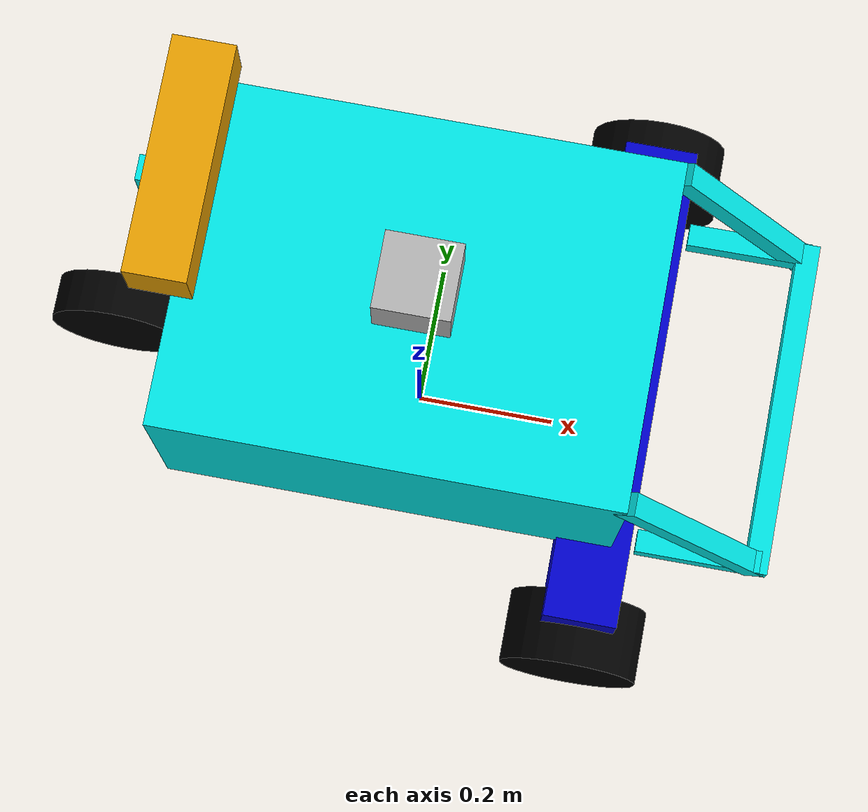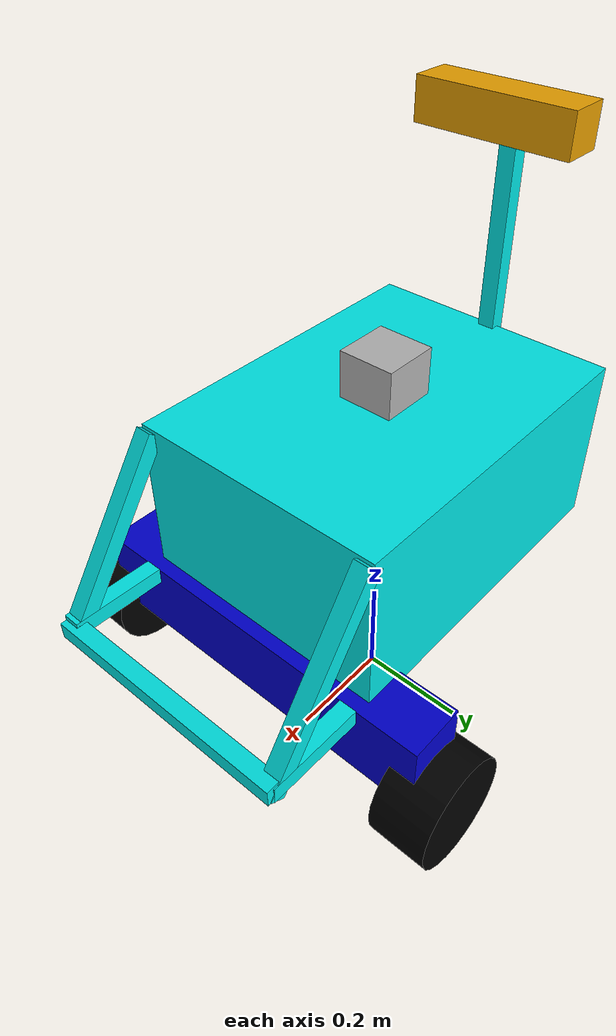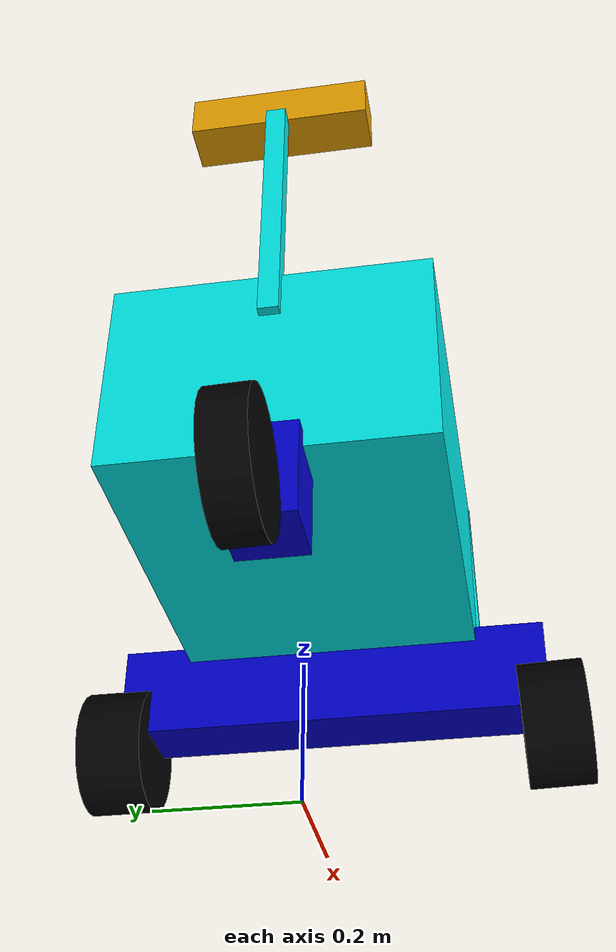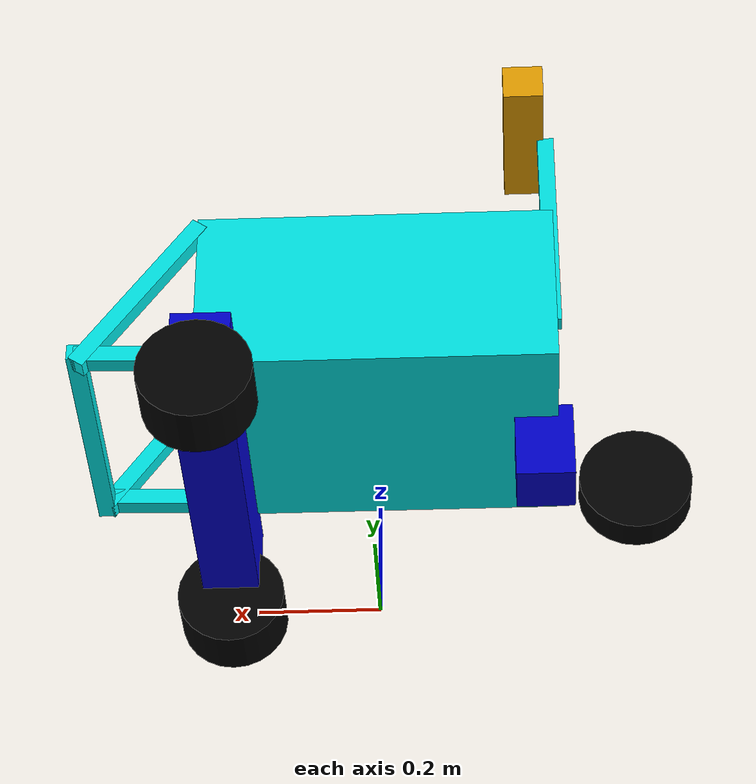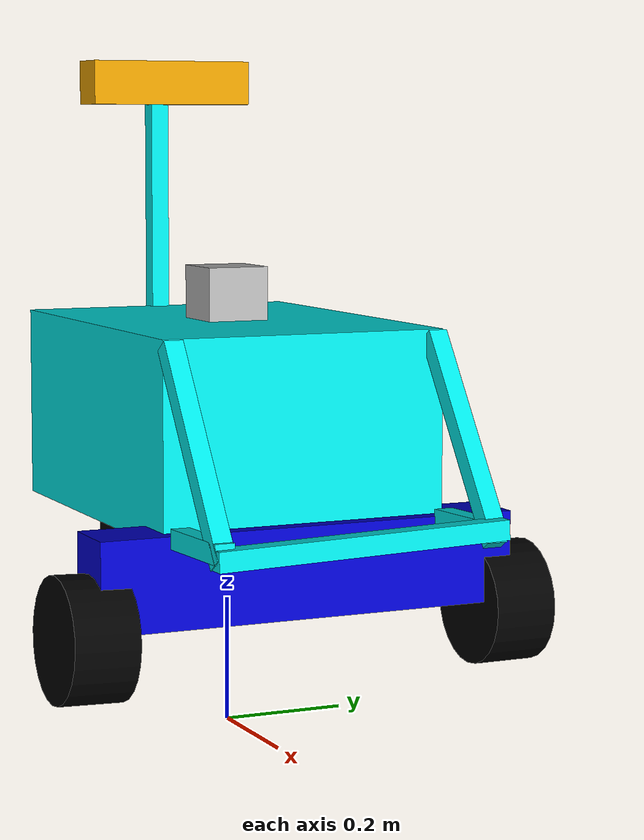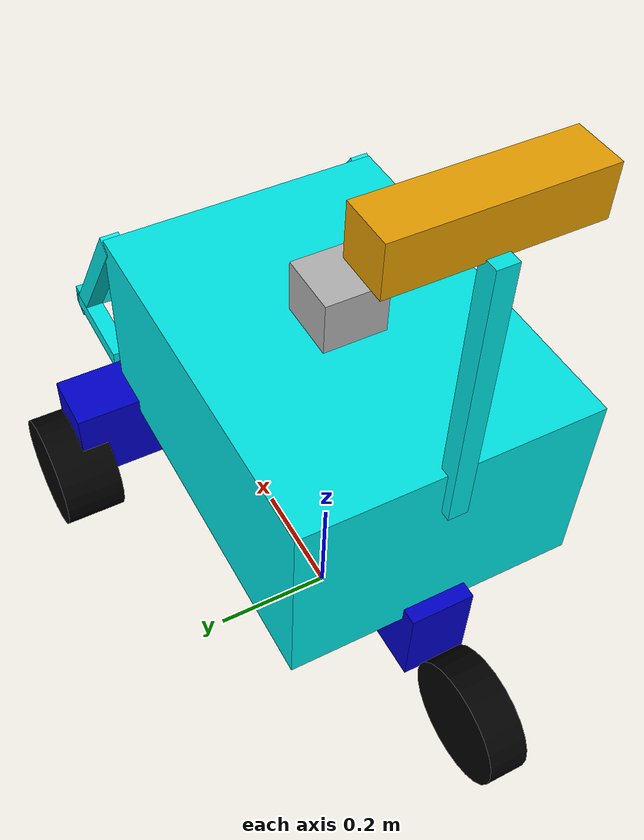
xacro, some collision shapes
<?xml version="1.0"?>
<!-- Revolute-Revolute Manipulator -->
<robot name="buddybot" xmlns:xacro="http://www.ros.org/wiki/xacro">

  <!-- Import all Gazebo-customization elements, including Gazebo colors -->
  <xacro:include filename="$(find buddybot_description)/urdf/buddybot.gazebo" />

  <material name="blue">
    <color rgba="0 0 0.8 1"/>
  </material>

  <material name="white">
    <color rgba="1 1 1 1"/>
  </material>

  <material name="black">
    <color rgba="0 0 0 0"/>
  </material>

  <material name="cyan">
    <color rgba="0 0.9 0.9 1.0"/>
  </material>

  <link name="base_link"/>

  <link name="body">
    <visual>
      <geometry>
        <box size=".6096 .4572 .3072"/>
      </geometry>
      <origin rpy="0 0 0" xyz="0 0 0"/>
      <material name="cyan"/>
    </visual>
    <collision>
      <geometry>
        <box size=".6096 .4572 .3072"/>
      </geometry>
    </collision>
    <inertial>
      <mass value="1"/>
      <inertia ixx="0.38832" ixy="0.0" ixz="0.0" iyy="0.48387" iyz="0.0" izz="0.25283"/>
    </inertial>
  </link>

  <joint name = 'base_link_to_body' type = 'fixed'>
    <parent link = 'base_link'/>
    <child link = 'body'/>
    <origin rpy="0 0 0" xyz="0 0 .5"/>
  </joint>

  <link name = "front_wheel_bar">
    <visual>
      <geometry>
        <box size = ".1 .67 .14"/>
      </geometry>
      <origin rpy="0 0 0" xyz="0 0 0"/>
      <material name = "blue"/>
    </visual>
    <collision>
      <geometry>
        <box size = ".1 .67 .14"/>
      </geometry>
    </collision>
    <inertial>
      <mass value="1"/>
      <inertia ixx="0.002466" ixy="0.0" ixz="0.0" iyy="0.038241" iyz="0.0" izz="0.039041"/>
    </inertial>
  </link>

  <joint name = 'base_to_front_wheel_bar' type = 'fixed'>
    <parent link = 'body'/>
    <child link = 'front_wheel_bar'/>
    <origin xyz = '.28 0 -.2'/>
  </joint>

<!-- LEFT WHEEL -->
  <link name="left_wheel">
    <visual>
      <geometry>
        <cylinder length="0.1" radius="0.095"/>
      </geometry>
      <origin rpy="1.5708 0 0" xyz="0 0 0"/>
      <material name="black"/>
    </visual>
    <collision>
      <geometry>
        <cylinder length="0.1" radius="0.095"/>
      </geometry>
      <origin rpy="1.5708 0 0" xyz="0 0 0"/>
    </collision>
    <inertial>
      <mass value="3"/>
      <inertia ixx="0.0092687" ixy="0.0" ixz="0.0" iyy="0.0092687" iyz="0.0" izz="0.0022563"/>
    </inertial>
  </link>

  <joint name="left_wheel_joint" type="continuous">
    <parent link="front_wheel_bar"/>
    <child link="left_wheel"/>
    <axis xyz="0 1 0"/>
    <origin xyz="0 0.34 -.08"/>
    <dynamics damping="0.7"/>
  </joint>

  <transmission name="left_wheel_trans">
    <type>transmission_interface/SimpleTransmission</type>
    <joint name="left_wheel_joint">
      <hardwareInterface>hardware_interface/VelocityJointInterface</hardwareInterface>
    </joint>
    <actuator name="motor_left">
      <mechanicalReduction>1</mechanicalReduction>
    </actuator>
  </transmission>

<!-- RIGHT WHEEL -->
  <link name="right_wheel">
    <visual>
      <geometry>
        <cylinder length="0.1" radius="0.095"/>
      </geometry>
      <origin rpy="-1.6 0 0" xyz="0 0 0"/>
      <material name="black"/>
    </visual>
    <collision>
      <geometry>
        <cylinder length="0.1" radius="0.095"/>
      </geometry>
      <origin rpy="-1.6 0 0" xyz="0 0 0"/>
    </collision>
    <inertial>
      <mass value="3"/>
      <inertia ixx="0.0092687" ixy="0.0" ixz="0.0" iyy="0.0092687" iyz="0.0" izz="0.0022563"/>
    </inertial>
  </link>

  <joint name="right_wheel_joint" type="continuous">
    <parent link="front_wheel_bar"/>
    <child link="right_wheel"/>
    <axis xyz="0 1 0"/>
    <origin xyz="0 -0.34 -.08"/>
    <dynamics damping="0.7"/>
  </joint>

  <transmission name="right_wheel_trans">
    <type>transmission_interface/SimpleTransmission</type>
    <joint name="right_wheel_joint">
      <hardwareInterface>hardware_interface/VelocityJointInterface</hardwareInterface>
    </joint>
    <actuator name="motor_right">
      <mechanicalReduction>1</mechanicalReduction>
    </actuator>
  </transmission>

<!-- BACK WHEEL -->
  <link name = "back_wheel_bar">
    <visual>
      <geometry>
        <box size = ".1 .1 .14"/>
      </geometry>
      <origin rpy="0 0 0" xyz="0 0 0"/>
      <material name = "blue"/>
    </visual>
    <collision>
      <geometry>
        <box size = ".1 .1 .14"/>
      </geometry>
    </collision>
    <inertial>
      <mass value="1"/>
      <inertia ixx="0.002466" ixy="0.0" ixz="0.0" iyy="0.001666" iyz="0.0" izz="0.002466"/>
    </inertial>
  </link>

  <joint name = 'base_to_back_wheel_bar' type = 'continuous'>
    <parent link = 'body'/>
    <child link = 'back_wheel_bar'/>
    <axis xyz="0 0 1"/>
    <origin xyz = '-.28 0 -.2'/>
  </joint>

  <joint name="back_bar_to_back_wheel" type="continuous">
    <parent link="back_wheel_bar"/>
    <child link="back_wheel"/>
    <axis xyz="0 1 0"/>
    <origin xyz="-0.15 0 -.07"/>
  </joint>

  <link name="back_wheel">

    <visual>
      <geometry>
        <cylinder length="0.06" radius="0.095"/>
      </geometry>
      <origin rpy="-1.6 0 0" xyz="-0 0 0"/>
      <material name="black"/>
    </visual>

    <collision>
      <geometry>
        <cylinder length="0.06" radius="0.095"/>
      </geometry>
      <origin rpy="-1.6 0 0" xyz="-0 0 0"/>
    </collision>

    <inertial>
      <mass value="3"/>
      <inertia ixx="0.0092687" ixy="0.0" ixz="0.0" iyy="0.0092687" iyz="0.0" izz="0.0022563"/>
    </inertial>
  </link>

 <!-- Hokuyo Laser -->

  <link name="laser">
    <collision>
      <origin xyz="0 0 0" rpy="0 0 0"/>
      <geometry>
  <box size="0.1 0.1 0.1"/>
      </geometry>
    </collision>

    <visual>
      <origin xyz="0 0 0" rpy="0 0 0"/>
      <geometry>
        <mesh filename="package://buddybot_description/meshes/hokuyo.dae"/>
      </geometry>
    </visual>

    <inertial>
      <mass value="1e-5" />
      <origin xyz="0 0 0" rpy="0 0 0"/>
      <inertia ixx="1e-6" ixy="0" ixz="0" iyy="1e-6" iyz="0" izz="1e-6" />
    </inertial>
  </link>

  <joint name = 'lidar_to_body' type="fixed">
    <parent link="body"/>
    <child link="laser"/>
    <origin xyz="0 0 .1886"/>
  </joint>

  <!-- Realsense -->

  <link name="realsense">
    <collision>
      <origin xyz="0 0 0" rpy="0 0 0"/>
      <geometry>
        <box size="0.073000 0.276000 0.072000"/>
      </geometry>
    </collision>

    <visual>
      <origin xyz="0 0 0" rpy="0 0 0"/>
      <geometry>
        <mesh filename="package://buddybot_description/meshes/kinect.dae"/>
      </geometry>
    </visual>

    <inertial>
      <mass value="0.1" />
      <origin xyz="0 0 0" rpy="0 0 0"/>
      <inertia ixx="9.108e-05" ixy="0.0" ixz="0.0" iyy="2.51e-06" iyz="0.0" izz="8.931e-05"/>
    </inertial>
  </link>

  <link name = 'camera_mount'>
    <visual>
      <geometry>
        <box size = '.03 .03 .42'/>
      </geometry>
      <origin rpy="0 0 0" xyz="0 0 -.21"/>
      <material name = 'cyan'/>
    </visual>
    <collision>
      <geometry>
        <box size = '.03 .03 .42'/>
      </geometry>
    </collision>
    <inertial>
      <mass value="1"/>
      <inertia ixx="0.01477" ixy="0.0" ixz="0.0" iyy="0.00015" iyz="0.0" izz="0.01477"/>
    </inertial>
  </link>

  <joint name="base_to_camera_mount" type="fixed">
    <parent link="body"/>
    <child link="camera_mount"/>
    <origin xyz="-.3048 0 .50"/>
  </joint>

  <joint name = 'camera_to_mount' type="fixed">
    <parent link="camera_mount"/>
    <child link="realsense"/>
    <origin xyz=".04 0 .032"/>
  </joint>

  <link name = 'front_right_top'>
    <visual>
      <geometry>
        <box size = '.03 .03 .35'/>
      </geometry>
      <origin rpy="0 -.6 0" xyz=".4 0.215 0"/>
      <material name = 'cyan'/>
    </visual>
    <collision>
      <geometry>
        <box size = '.03 .03 .35'/>
      </geometry>
    </collision>
    <inertial>
      <mass value="1"/>
      <inertia ixx="0.01028" ixy="0.0" ixz="0.0" iyy="0.00015" iyz="0.0" izz="0.01028"/>
    </inertial>
  </link>

  <link name = 'front_left_top'>
    <visual>
      <geometry>
        <box size = '.03 .03 .35'/>
      </geometry>
      <origin rpy="0 -.6 0" xyz=".4 -0.215 0"/>
      <material name = 'cyan'/>
    </visual>
    <collision>
      <geometry>
        <box size = '.03 .03 .35'/>
      </geometry>
    </collision>
    <inertial>
      <mass value="1"/>
      <inertia ixx="0.01028" ixy="0.0" ixz="0.0" iyy="0.00015" iyz="0.0" izz="0.01028"/>
    </inertial>
  </link>

  <link name = 'front_right_bottom'>
    <visual>
      <geometry>
        <box size = '.03 .03 .1677'/>
      </geometry>
      <origin rpy="0 -1.6 0" xyz="0.42 .215 -.13"/>
      <material name = 'cyan'/>
    </visual>
    <collision>
      <geometry>
        <box size = '.03 .03 .1677'/>
      </geometry>
    </collision>
    <inertial>
      <mass value="1"/>
      <inertia ixx="0.002419" ixy="0.0" ixz="0.0" iyy="0.00015" iyz="0.0" izz="0.002419"/>
    </inertial>
  </link>

  <link name = 'front_left_bottom'>
    <visual>
      <geometry>
        <box size = '.03 .03 .1677'/>
      </geometry>
      <origin rpy="0 -1.6 0" xyz="0.42 -.215 -.13"/>
      <material name = 'cyan'/>
    </visual>
    <collision>
      <geometry>
        <box size = '.03 .03 .1677'/>
      </geometry>
    </collision>
    <inertial>
      <mass value="1"/>
      <inertia ixx="0.002419" ixy="0.0" ixz="0.0" iyy="0.00015" iyz="0.0" izz="0.002419"/>
    </inertial>
  </link>

  <link name = 'front_connector'>
    <visual>
      <geometry>
        <box size = '.03 .03 .4572'/>
      </geometry>
      <origin rpy="1.6 0 0" xyz=".5 0 -.13"/>
      <material name = 'cyan'/>
    </visual>
    <collision>
      <geometry>
        <box size = '.03 .03 .4572'/>
      </geometry>
    </collision>
    <inertial>
      <mass value="1"/>
      <inertia ixx="0.01749" ixy="0.0" ixz="0.0" iyy="0.00015" iyz="0.0" izz="0.01749"/>
    </inertial>
  </link>

  <joint name = 'F_R_T_to_base' type = 'fixed'>
    <parent link="body"/>
    <child link="front_right_top"/>
    <origin xyz="0 0 0"/>
  </joint>

  <joint name = 'F_L_T_to_base' type = 'fixed'>
    <parent link="body"/>
    <child link="front_left_top"/>
    <origin xyz="0 0 0"/>
  </joint>

  <joint name = 'F_R_B_to_base' type = 'fixed'>
    <parent link="body"/>
    <child link="front_right_bottom"/>
    <origin xyz="0 0 0"/>
  </joint>

  <joint name = 'F_L_B_to_base' type = 'fixed'>
    <parent link="body"/>
    <child link="front_left_bottom"/>
    <origin xyz="0 0 0"/>
  </joint>

  <joint name = 'front_connector_to_FRT' type = 'fixed'>
    <parent link="front_right_top"/>
    <child link="front_connector"/>
    <origin xyz="0 0 0"/>
  </joint>

</robot>
